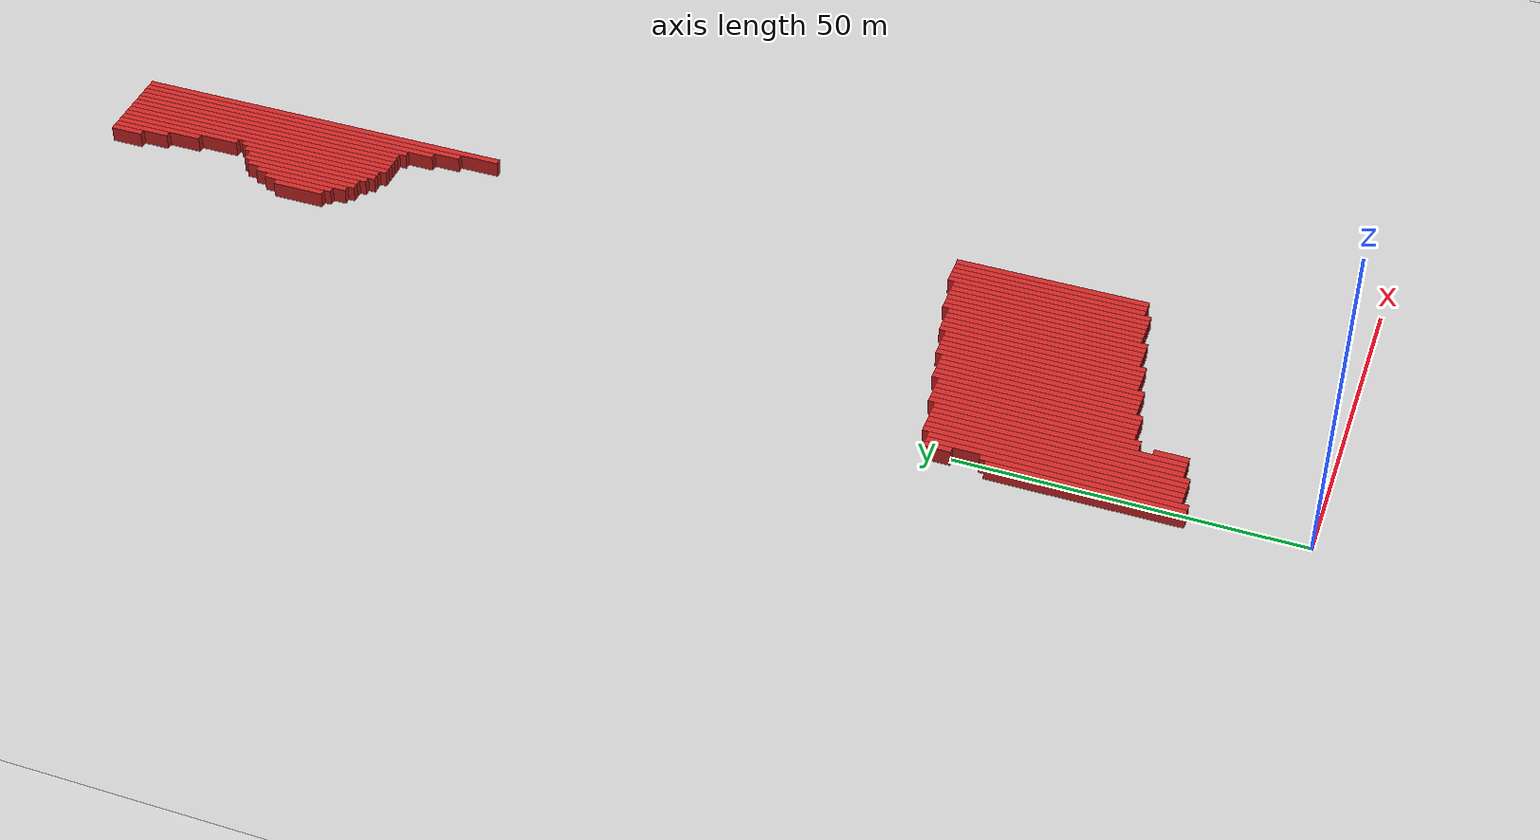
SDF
<sdf version="1.4">
 <world name="1_wall">
  <model name="ground_plane">
   <static>1</static>
   <link name="link">
    <collision name="collision">
     <geometry><plane><normal>0 0 1</normal><size>1000 1000</size></plane></geometry>
     <surface><friction><ode><mu>100</mu><mu2>50</mu2></ode></friction></surface>
    </collision>
    <visual name="visual">
     <cast_shadows>0</cast_shadows>
     <geometry><plane><normal>0 0 1</normal><size>10000 10000</size></plane></geometry>
     <material>
      <script><uri>file://media/materials/scripts/gazebo.material</uri><name>Gazebo/Grey</name></script>
     </material>
    </visual>
    <velocity_decay><linear>0</linear><angular>0</angular></velocity_decay>
   </link>
  </model>
  <model name="Wall_0">
   <static>1</static>
   <link name="Wall_0">
    <collision name="Wall_Collision_0">
     <geometry><box><size>28.0 1.0 2.5</size></box></geometry>
     <pose>0 0 1.25 0 -0 0</pose>
    </collision>
    <visual name="Wall_Visual_0">
     <pose>0 0 1.25 0 -0 0</pose>
     <geometry><box><size>28.0 1.0 2.5</size></box></geometry>
     <material>
      <script><uri>file://media/materials/scripts/gazebo.material</uri><name>Gazebo/Red</name></script>
     </material>
    </visual>
    <velocity_decay><linear>0</linear><angular>0</angular></velocity_decay>
    <pose>-1.5 31.0 0 0 0 1.5707963267948966</pose>
   </link>
  </model>
  <model name="Wall_1">
   <static>1</static>
   <link name="Wall_1">
    <collision name="Wall_Collision_1">
     <geometry><box><size>29.0 1.0 2.5</size></box></geometry>
     <pose>0 0 1.25 0 -0 0</pose>
    </collision>
    <visual name="Wall_Visual_1">
     <pose>0 0 1.25 0 -0 0</pose>
     <geometry><box><size>29.0 1.0 2.5</size></box></geometry>
     <material>
      <script><uri>file://media/materials/scripts/gazebo.material</uri><name>Gazebo/Red</name></script>
     </material>
    </visual>
    <velocity_decay><linear>0</linear><angular>0</angular></velocity_decay>
    <pose>-0.5 31.5 0 0 0 1.5707963267948966</pose>
   </link>
  </model>
  <model name="Wall_2">
   <static>1</static>
   <link name="Wall_2">
    <collision name="Wall_Collision_2">
     <geometry><box><size>4.0 1.0 2.5</size></box></geometry>
     <pose>0 0 1.25 0 -0 0</pose>
    </collision>
    <visual name="Wall_Visual_2">
     <pose>0 0 1.25 0 -0 0</pose>
     <geometry><box><size>4.0 1.0 2.5</size></box></geometry>
     <material>
      <script><uri>file://media/materials/scripts/gazebo.material</uri><name>Gazebo/Red</name></script>
     </material>
    </visual>
    <velocity_decay><linear>0</linear><angular>0</angular></velocity_decay>
    <pose>-0.5 52.0 0 0 0 1.5707963267948966</pose>
   </link>
  </model>
  <model name="Wall_3">
   <static>1</static>
   <link name="Wall_3">
    <collision name="Wall_Collision_3">
     <geometry><box><size>36.0 1.0 2.5</size></box></geometry>
     <pose>0 0 1.25 0 -0 0</pose>
    </collision>
    <visual name="Wall_Visual_3">
     <pose>0 0 1.25 0 -0 0</pose>
     <geometry><box><size>36.0 1.0 2.5</size></box></geometry>
     <material>
      <script><uri>file://media/materials/scripts/gazebo.material</uri><name>Gazebo/Red</name></script>
     </material>
    </visual>
    <velocity_decay><linear>0</linear><angular>0</angular></velocity_decay>
    <pose>0.5 36.0 0 0 0 1.5707963267948966</pose>
   </link>
  </model>
  <model name="Wall_4">
   <static>1</static>
   <link name="Wall_4">
    <collision name="Wall_Collision_4">
     <geometry><box><size>36.0 1.0 2.5</size></box></geometry>
     <pose>0 0 1.25 0 -0 0</pose>
    </collision>
    <visual name="Wall_Visual_4">
     <pose>0 0 1.25 0 -0 0</pose>
     <geometry><box><size>36.0 1.0 2.5</size></box></geometry>
     <material>
      <script><uri>file://media/materials/scripts/gazebo.material</uri><name>Gazebo/Red</name></script>
     </material>
    </visual>
    <velocity_decay><linear>0</linear><angular>0</angular></velocity_decay>
    <pose>1.5 36.0 0 0 0 1.5707963267948966</pose>
   </link>
  </model>
  <model name="Wall_5">
   <static>1</static>
   <link name="Wall_5">
    <collision name="Wall_Collision_5">
     <geometry><box><size>37.0 1.0 2.5</size></box></geometry>
     <pose>0 0 1.25 0 -0 0</pose>
    </collision>
    <visual name="Wall_Visual_5">
     <pose>0 0 1.25 0 -0 0</pose>
     <geometry><box><size>37.0 1.0 2.5</size></box></geometry>
     <material>
      <script><uri>file://media/materials/scripts/gazebo.material</uri><name>Gazebo/Red</name></script>
     </material>
    </visual>
    <velocity_decay><linear>0</linear><angular>0</angular></velocity_decay>
    <pose>2.5 36.5 0 0 0 1.5707963267948966</pose>
   </link>
  </model>
  <model name="Wall_6">
   <static>1</static>
   <link name="Wall_6">
    <collision name="Wall_Collision_6">
     <geometry><box><size>37.0 1.0 2.5</size></box></geometry>
     <pose>0 0 1.25 0 -0 0</pose>
    </collision>
    <visual name="Wall_Visual_6">
     <pose>0 0 1.25 0 -0 0</pose>
     <geometry><box><size>37.0 1.0 2.5</size></box></geometry>
     <material>
      <script><uri>file://media/materials/scripts/gazebo.material</uri><name>Gazebo/Red</name></script>
     </material>
    </visual>
    <velocity_decay><linear>0</linear><angular>0</angular></velocity_decay>
    <pose>3.5 36.5 0 0 0 1.5707963267948966</pose>
   </link>
  </model>
  <model name="Wall_7">
   <static>1</static>
   <link name="Wall_7">
    <collision name="Wall_Collision_7">
     <geometry><box><size>37.0 1.0 2.5</size></box></geometry>
     <pose>0 0 1.25 0 -0 0</pose>
    </collision>
    <visual name="Wall_Visual_7">
     <pose>0 0 1.25 0 -0 0</pose>
     <geometry><box><size>37.0 1.0 2.5</size></box></geometry>
     <material>
      <script><uri>file://media/materials/scripts/gazebo.material</uri><name>Gazebo/Red</name></script>
     </material>
    </visual>
    <velocity_decay><linear>0</linear><angular>0</angular></velocity_decay>
    <pose>4.5 36.5 0 0 0 1.5707963267948966</pose>
   </link>
  </model>
  <model name="Wall_8">
   <static>1</static>
   <link name="Wall_8">
    <collision name="Wall_Collision_8">
     <geometry><box><size>36.0 1.0 2.5</size></box></geometry>
     <pose>0 0 1.25 0 -0 0</pose>
    </collision>
    <visual name="Wall_Visual_8">
     <pose>0 0 1.25 0 -0 0</pose>
     <geometry><box><size>36.0 1.0 2.5</size></box></geometry>
     <material>
      <script><uri>file://media/materials/scripts/gazebo.material</uri><name>Gazebo/Red</name></script>
     </material>
    </visual>
    <velocity_decay><linear>0</linear><angular>0</angular></velocity_decay>
    <pose>5.5 37.0 0 0 0 1.5707963267948966</pose>
   </link>
  </model>
  <model name="Wall_9">
   <static>1</static>
   <link name="Wall_9">
    <collision name="Wall_Collision_9">
     <geometry><box><size>36.0 1.0 2.5</size></box></geometry>
     <pose>0 0 1.25 0 -0 0</pose>
    </collision>
    <visual name="Wall_Visual_9">
     <pose>0 0 1.25 0 -0 0</pose>
     <geometry><box><size>36.0 1.0 2.5</size></box></geometry>
     <material>
      <script><uri>file://media/materials/scripts/gazebo.material</uri><name>Gazebo/Red</name></script>
     </material>
    </visual>
    <velocity_decay><linear>0</linear><angular>0</angular></velocity_decay>
    <pose>6.5 37.0 0 0 0 1.5707963267948966</pose>
   </link>
  </model>
  <model name="Wall_10">
   <static>1</static>
   <link name="Wall_10">
    <collision name="Wall_Collision_10">
     <geometry><box><size>36.0 1.0 2.5</size></box></geometry>
     <pose>0 0 1.25 0 -0 0</pose>
    </collision>
    <visual name="Wall_Visual_10">
     <pose>0 0 1.25 0 -0 0</pose>
     <geometry><box><size>36.0 1.0 2.5</size></box></geometry>
     <material>
      <script><uri>file://media/materials/scripts/gazebo.material</uri><name>Gazebo/Red</name></script>
     </material>
    </visual>
    <velocity_decay><linear>0</linear><angular>0</angular></velocity_decay>
    <pose>7.5 37.0 0 0 0 1.5707963267948966</pose>
   </link>
  </model>
  <model name="Wall_11">
   <static>1</static>
   <link name="Wall_11">
    <collision name="Wall_Collision_11">
     <geometry><box><size>5.0 1.0 2.5</size></box></geometry>
     <pose>0 0 1.25 0 -0 0</pose>
    </collision>
    <visual name="Wall_Visual_11">
     <pose>0 0 1.25 0 -0 0</pose>
     <geometry><box><size>5.0 1.0 2.5</size></box></geometry>
     <material>
      <script><uri>file://media/materials/scripts/gazebo.material</uri><name>Gazebo/Red</name></script>
     </material>
    </visual>
    <velocity_decay><linear>0</linear><angular>0</angular></velocity_decay>
    <pose>8.5 21.5 0 0 0 1.5707963267948966</pose>
   </link>
  </model>
  <model name="Wall_12">
   <static>1</static>
   <link name="Wall_12">
    <collision name="Wall_Collision_12">
     <geometry><box><size>30.0 1.0 2.5</size></box></geometry>
     <pose>0 0 1.25 0 -0 0</pose>
    </collision>
    <visual name="Wall_Visual_12">
     <pose>0 0 1.25 0 -0 0</pose>
     <geometry><box><size>30.0 1.0 2.5</size></box></geometry>
     <material>
      <script><uri>file://media/materials/scripts/gazebo.material</uri><name>Gazebo/Red</name></script>
     </material>
    </visual>
    <velocity_decay><linear>0</linear><angular>0</angular></velocity_decay>
    <pose>8.5 41.0 0 0 0 1.5707963267948966</pose>
   </link>
  </model>
  <model name="Wall_13">
   <static>1</static>
   <link name="Wall_13">
    <collision name="Wall_Collision_13">
     <geometry><box><size>30.0 1.0 2.5</size></box></geometry>
     <pose>0 0 1.25 0 -0 0</pose>
    </collision>
    <visual name="Wall_Visual_13">
     <pose>0 0 1.25 0 -0 0</pose>
     <geometry><box><size>30.0 1.0 2.5</size></box></geometry>
     <material>
      <script><uri>file://media/materials/scripts/gazebo.material</uri><name>Gazebo/Red</name></script>
     </material>
    </visual>
    <velocity_decay><linear>0</linear><angular>0</angular></velocity_decay>
    <pose>9.5 41.0 0 0 0 1.5707963267948966</pose>
   </link>
  </model>
  <model name="Wall_14">
   <static>1</static>
   <link name="Wall_14">
    <collision name="Wall_Collision_14">
     <geometry><box><size>29.0 1.0 2.5</size></box></geometry>
     <pose>0 0 1.25 0 -0 0</pose>
    </collision>
    <visual name="Wall_Visual_14">
     <pose>0 0 1.25 0 -0 0</pose>
     <geometry><box><size>29.0 1.0 2.5</size></box></geometry>
     <material>
      <script><uri>file://media/materials/scripts/gazebo.material</uri><name>Gazebo/Red</name></script>
     </material>
    </visual>
    <velocity_decay><linear>0</linear><angular>0</angular></velocity_decay>
    <pose>10.5 41.5 0 0 0 1.5707963267948966</pose>
   </link>
  </model>
  <model name="Wall_15">
   <static>1</static>
   <link name="Wall_15">
    <collision name="Wall_Collision_15">
     <geometry><box><size>29.0 1.0 2.5</size></box></geometry>
     <pose>0 0 1.25 0 -0 0</pose>
    </collision>
    <visual name="Wall_Visual_15">
     <pose>0 0 1.25 0 -0 0</pose>
     <geometry><box><size>29.0 1.0 2.5</size></box></geometry>
     <material>
      <script><uri>file://media/materials/scripts/gazebo.material</uri><name>Gazebo/Red</name></script>
     </material>
    </visual>
    <velocity_decay><linear>0</linear><angular>0</angular></velocity_decay>
    <pose>11.5 41.5 0 0 0 1.5707963267948966</pose>
   </link>
  </model>
  <model name="Wall_16">
   <static>1</static>
   <link name="Wall_16">
    <collision name="Wall_Collision_16">
     <geometry><box><size>29.0 1.0 2.5</size></box></geometry>
     <pose>0 0 1.25 0 -0 0</pose>
    </collision>
    <visual name="Wall_Visual_16">
     <pose>0 0 1.25 0 -0 0</pose>
     <geometry><box><size>29.0 1.0 2.5</size></box></geometry>
     <material>
      <script><uri>file://media/materials/scripts/gazebo.material</uri><name>Gazebo/Red</name></script>
     </material>
    </visual>
    <velocity_decay><linear>0</linear><angular>0</angular></velocity_decay>
    <pose>12.5 41.5 0 0 0 1.5707963267948966</pose>
   </link>
  </model>
  <model name="Wall_17">
   <static>1</static>
   <link name="Wall_17">
    <collision name="Wall_Collision_17">
     <geometry><box><size>30.0 1.0 2.5</size></box></geometry>
     <pose>0 0 1.25 0 -0 0</pose>
    </collision>
    <visual name="Wall_Visual_17">
     <pose>0 0 1.25 0 -0 0</pose>
     <geometry><box><size>30.0 1.0 2.5</size></box></geometry>
     <material>
      <script><uri>file://media/materials/scripts/gazebo.material</uri><name>Gazebo/Red</name></script>
     </material>
    </visual>
    <velocity_decay><linear>0</linear><angular>0</angular></velocity_decay>
    <pose>13.5 42.0 0 0 0 1.5707963267948966</pose>
   </link>
  </model>
  <model name="Wall_18">
   <static>1</static>
   <link name="Wall_18">
    <collision name="Wall_Collision_18">
     <geometry><box><size>30.0 1.0 2.5</size></box></geometry>
     <pose>0 0 1.25 0 -0 0</pose>
    </collision>
    <visual name="Wall_Visual_18">
     <pose>0 0 1.25 0 -0 0</pose>
     <geometry><box><size>30.0 1.0 2.5</size></box></geometry>
     <material>
      <script><uri>file://media/materials/scripts/gazebo.material</uri><name>Gazebo/Red</name></script>
     </material>
    </visual>
    <velocity_decay><linear>0</linear><angular>0</angular></velocity_decay>
    <pose>14.5 42.0 0 0 0 1.5707963267948966</pose>
   </link>
  </model>
  <model name="Wall_19">
   <static>1</static>
   <link name="Wall_19">
    <collision name="Wall_Collision_19">
     <geometry><box><size>29.0 1.0 2.5</size></box></geometry>
     <pose>0 0 1.25 0 -0 0</pose>
    </collision>
    <visual name="Wall_Visual_19">
     <pose>0 0 1.25 0 -0 0</pose>
     <geometry><box><size>29.0 1.0 2.5</size></box></geometry>
     <material>
      <script><uri>file://media/materials/scripts/gazebo.material</uri><name>Gazebo/Red</name></script>
     </material>
    </visual>
    <velocity_decay><linear>0</linear><angular>0</angular></velocity_decay>
    <pose>15.5 42.5 0 0 0 1.5707963267948966</pose>
   </link>
  </model>
  <model name="Wall_20">
   <static>1</static>
   <link name="Wall_20">
    <collision name="Wall_Collision_20">
     <geometry><box><size>29.0 1.0 2.5</size></box></geometry>
     <pose>0 0 1.25 0 -0 0</pose>
    </collision>
    <visual name="Wall_Visual_20">
     <pose>0 0 1.25 0 -0 0</pose>
     <geometry><box><size>29.0 1.0 2.5</size></box></geometry>
     <material>
      <script><uri>file://media/materials/scripts/gazebo.material</uri><name>Gazebo/Red</name></script>
     </material>
    </visual>
    <velocity_decay><linear>0</linear><angular>0</angular></velocity_decay>
    <pose>16.5 42.5 0 0 0 1.5707963267948966</pose>
   </link>
  </model>
  <model name="Wall_21">
   <static>1</static>
   <link name="Wall_21">
    <collision name="Wall_Collision_21">
     <geometry><box><size>29.0 1.0 2.5</size></box></geometry>
     <pose>0 0 1.25 0 -0 0</pose>
    </collision>
    <visual name="Wall_Visual_21">
     <pose>0 0 1.25 0 -0 0</pose>
     <geometry><box><size>29.0 1.0 2.5</size></box></geometry>
     <material>
      <script><uri>file://media/materials/scripts/gazebo.material</uri><name>Gazebo/Red</name></script>
     </material>
    </visual>
    <velocity_decay><linear>0</linear><angular>0</angular></velocity_decay>
    <pose>17.5 42.5 0 0 0 1.5707963267948966</pose>
   </link>
  </model>
  <model name="Wall_22">
   <static>1</static>
   <link name="Wall_22">
    <collision name="Wall_Collision_22">
     <geometry><box><size>30.0 1.0 2.5</size></box></geometry>
     <pose>0 0 1.25 0 -0 0</pose>
    </collision>
    <visual name="Wall_Visual_22">
     <pose>0 0 1.25 0 -0 0</pose>
     <geometry><box><size>30.0 1.0 2.5</size></box></geometry>
     <material>
      <script><uri>file://media/materials/scripts/gazebo.material</uri><name>Gazebo/Red</name></script>
     </material>
    </visual>
    <velocity_decay><linear>0</linear><angular>0</angular></velocity_decay>
    <pose>18.5 43.0 0 0 0 1.5707963267948966</pose>
   </link>
  </model>
  <model name="Wall_23">
   <static>1</static>
   <link name="Wall_23">
    <collision name="Wall_Collision_23">
     <geometry><box><size>30.0 1.0 2.5</size></box></geometry>
     <pose>0 0 1.25 0 -0 0</pose>
    </collision>
    <visual name="Wall_Visual_23">
     <pose>0 0 1.25 0 -0 0</pose>
     <geometry><box><size>30.0 1.0 2.5</size></box></geometry>
     <material>
      <script><uri>file://media/materials/scripts/gazebo.material</uri><name>Gazebo/Red</name></script>
     </material>
    </visual>
    <velocity_decay><linear>0</linear><angular>0</angular></velocity_decay>
    <pose>19.5 43.0 0 0 0 1.5707963267948966</pose>
   </link>
  </model>
  <model name="Wall_24">
   <static>1</static>
   <link name="Wall_24">
    <collision name="Wall_Collision_24">
     <geometry><box><size>29.0 1.0 2.5</size></box></geometry>
     <pose>0 0 1.25 0 -0 0</pose>
    </collision>
    <visual name="Wall_Visual_24">
     <pose>0 0 1.25 0 -0 0</pose>
     <geometry><box><size>29.0 1.0 2.5</size></box></geometry>
     <material>
      <script><uri>file://media/materials/scripts/gazebo.material</uri><name>Gazebo/Red</name></script>
     </material>
    </visual>
    <velocity_decay><linear>0</linear><angular>0</angular></velocity_decay>
    <pose>20.5 43.5 0 0 0 1.5707963267948966</pose>
   </link>
  </model>
  <model name="Wall_25">
   <static>1</static>
   <link name="Wall_25">
    <collision name="Wall_Collision_25">
     <geometry><box><size>29.0 1.0 2.5</size></box></geometry>
     <pose>0 0 1.25 0 -0 0</pose>
    </collision>
    <visual name="Wall_Visual_25">
     <pose>0 0 1.25 0 -0 0</pose>
     <geometry><box><size>29.0 1.0 2.5</size></box></geometry>
     <material>
      <script><uri>file://media/materials/scripts/gazebo.material</uri><name>Gazebo/Red</name></script>
     </material>
    </visual>
    <velocity_decay><linear>0</linear><angular>0</angular></velocity_decay>
    <pose>21.5 43.5 0 0 0 1.5707963267948966</pose>
   </link>
  </model>
  <model name="Wall_26">
   <static>1</static>
   <link name="Wall_26">
    <collision name="Wall_Collision_26">
     <geometry><box><size>8.0 1.0 2.5</size></box></geometry>
     <pose>0 0 1.25 0 -0 0</pose>
    </collision>
    <visual name="Wall_Visual_26">
     <pose>0 0 1.25 0 -0 0</pose>
     <geometry><box><size>8.0 1.0 2.5</size></box></geometry>
     <material>
      <script><uri>file://media/materials/scripts/gazebo.material</uri><name>Gazebo/Red</name></script>
     </material>
    </visual>
    <velocity_decay><linear>0</linear><angular>0</angular></velocity_decay>
    <pose>21.5 160.0 0 0 0 1.5707963267948966</pose>
   </link>
  </model>
  <model name="Wall_27">
   <static>1</static>
   <link name="Wall_27">
    <collision name="Wall_Collision_27">
     <geometry><box><size>29.0 1.0 2.5</size></box></geometry>
     <pose>0 0 1.25 0 -0 0</pose>
    </collision>
    <visual name="Wall_Visual_27">
     <pose>0 0 1.25 0 -0 0</pose>
     <geometry><box><size>29.0 1.0 2.5</size></box></geometry>
     <material>
      <script><uri>file://media/materials/scripts/gazebo.material</uri><name>Gazebo/Red</name></script>
     </material>
    </visual>
    <velocity_decay><linear>0</linear><angular>0</angular></velocity_decay>
    <pose>22.5 43.5 0 0 0 1.5707963267948966</pose>
   </link>
  </model>
  <model name="Wall_28">
   <static>1</static>
   <link name="Wall_28">
    <collision name="Wall_Collision_28">
     <geometry><box><size>11.0 1.0 2.5</size></box></geometry>
     <pose>0 0 1.25 0 -0 0</pose>
    </collision>
    <visual name="Wall_Visual_28">
     <pose>0 0 1.25 0 -0 0</pose>
     <geometry><box><size>11.0 1.0 2.5</size></box></geometry>
     <material>
      <script><uri>file://media/materials/scripts/gazebo.material</uri><name>Gazebo/Red</name></script>
     </material>
    </visual>
    <velocity_decay><linear>0</linear><angular>0</angular></velocity_decay>
    <pose>22.5 160.5 0 0 0 1.5707963267948966</pose>
   </link>
  </model>
  <model name="Wall_29">
   <static>1</static>
   <link name="Wall_29">
    <collision name="Wall_Collision_29">
     <geometry><box><size>30.0 1.0 2.5</size></box></geometry>
     <pose>0 0 1.25 0 -0 0</pose>
    </collision>
    <visual name="Wall_Visual_29">
     <pose>0 0 1.25 0 -0 0</pose>
     <geometry><box><size>30.0 1.0 2.5</size></box></geometry>
     <material>
      <script><uri>file://media/materials/scripts/gazebo.material</uri><name>Gazebo/Red</name></script>
     </material>
    </visual>
    <velocity_decay><linear>0</linear><angular>0</angular></velocity_decay>
    <pose>23.5 44.0 0 0 0 1.5707963267948966</pose>
   </link>
  </model>
  <model name="Wall_30">
   <static>1</static>
   <link name="Wall_30">
    <collision name="Wall_Collision_30">
     <geometry><box><size>15.0 1.0 2.5</size></box></geometry>
     <pose>0 0 1.25 0 -0 0</pose>
    </collision>
    <visual name="Wall_Visual_30">
     <pose>0 0 1.25 0 -0 0</pose>
     <geometry><box><size>15.0 1.0 2.5</size></box></geometry>
     <material>
      <script><uri>file://media/materials/scripts/gazebo.material</uri><name>Gazebo/Red</name></script>
     </material>
    </visual>
    <velocity_decay><linear>0</linear><angular>0</angular></velocity_decay>
    <pose>23.5 160.5 0 0 0 1.5707963267948966</pose>
   </link>
  </model>
  <model name="Wall_31">
   <static>1</static>
   <link name="Wall_31">
    <collision name="Wall_Collision_31">
     <geometry><box><size>30.0 1.0 2.5</size></box></geometry>
     <pose>0 0 1.25 0 -0 0</pose>
    </collision>
    <visual name="Wall_Visual_31">
     <pose>0 0 1.25 0 -0 0</pose>
     <geometry><box><size>30.0 1.0 2.5</size></box></geometry>
     <material>
      <script><uri>file://media/materials/scripts/gazebo.material</uri><name>Gazebo/Red</name></script>
     </material>
    </visual>
    <velocity_decay><linear>0</linear><angular>0</angular></velocity_decay>
    <pose>24.5 44.0 0 0 0 1.5707963267948966</pose>
   </link>
  </model>
  <model name="Wall_32">
   <static>1</static>
   <link name="Wall_32">
    <collision name="Wall_Collision_32">
     <geometry><box><size>18.0 1.0 2.5</size></box></geometry>
     <pose>0 0 1.25 0 -0 0</pose>
    </collision>
    <visual name="Wall_Visual_32">
     <pose>0 0 1.25 0 -0 0</pose>
     <geometry><box><size>18.0 1.0 2.5</size></box></geometry>
     <material>
      <script><uri>file://media/materials/scripts/gazebo.material</uri><name>Gazebo/Red</name></script>
     </material>
    </visual>
    <velocity_decay><linear>0</linear><angular>0</angular></velocity_decay>
    <pose>24.5 161.0 0 0 0 1.5707963267948966</pose>
   </link>
  </model>
  <model name="Wall_33">
   <static>1</static>
   <link name="Wall_33">
    <collision name="Wall_Collision_33">
     <geometry><box><size>29.0 1.0 2.5</size></box></geometry>
     <pose>0 0 1.25 0 -0 0</pose>
    </collision>
    <visual name="Wall_Visual_33">
     <pose>0 0 1.25 0 -0 0</pose>
     <geometry><box><size>29.0 1.0 2.5</size></box></geometry>
     <material>
      <script><uri>file://media/materials/scripts/gazebo.material</uri><name>Gazebo/Red</name></script>
     </material>
    </visual>
    <velocity_decay><linear>0</linear><angular>0</angular></velocity_decay>
    <pose>25.5 44.5 0 0 0 1.5707963267948966</pose>
   </link>
  </model>
  <model name="Wall_34">
   <static>1</static>
   <link name="Wall_34">
    <collision name="Wall_Collision_34">
     <geometry><box><size>19.0 1.0 2.5</size></box></geometry>
     <pose>0 0 1.25 0 -0 0</pose>
    </collision>
    <visual name="Wall_Visual_34">
     <pose>0 0 1.25 0 -0 0</pose>
     <geometry><box><size>19.0 1.0 2.5</size></box></geometry>
     <material>
      <script><uri>file://media/materials/scripts/gazebo.material</uri><name>Gazebo/Red</name></script>
     </material>
    </visual>
    <velocity_decay><linear>0</linear><angular>0</angular></velocity_decay>
    <pose>25.5 161.5 0 0 0 1.5707963267948966</pose>
   </link>
  </model>
  <model name="Wall_35">
   <static>1</static>
   <link name="Wall_35">
    <collision name="Wall_Collision_35">
     <geometry><box><size>5.0 1.0 2.5</size></box></geometry>
     <pose>0 0 1.25 0 -0 0</pose>
    </collision>
    <visual name="Wall_Visual_35">
     <pose>0 0 1.25 0 -0 0</pose>
     <geometry><box><size>5.0 1.0 2.5</size></box></geometry>
     <material>
      <script><uri>file://media/materials/scripts/gazebo.material</uri><name>Gazebo/Red</name></script>
     </material>
    </visual>
    <velocity_decay><linear>0</linear><angular>0</angular></velocity_decay>
    <pose>25.5 191.5 0 0 0 1.5707963267948966</pose>
   </link>
  </model>
  <model name="Wall_36">
   <static>1</static>
   <link name="Wall_36">
    <collision name="Wall_Collision_36">
     <geometry><box><size>29.0 1.0 2.5</size></box></geometry>
     <pose>0 0 1.25 0 -0 0</pose>
    </collision>
    <visual name="Wall_Visual_36">
     <pose>0 0 1.25 0 -0 0</pose>
     <geometry><box><size>29.0 1.0 2.5</size></box></geometry>
     <material>
      <script><uri>file://media/materials/scripts/gazebo.material</uri><name>Gazebo/Red</name></script>
     </material>
    </visual>
    <velocity_decay><linear>0</linear><angular>0</angular></velocity_decay>
    <pose>26.5 44.5 0 0 0 1.5707963267948966</pose>
   </link>
  </model>
  <model name="Wall_37">
   <static>1</static>
   <link name="Wall_37">
    <collision name="Wall_Collision_37">
     <geometry><box><size>20.0 1.0 2.5</size></box></geometry>
     <pose>0 0 1.25 0 -0 0</pose>
    </collision>
    <visual name="Wall_Visual_37">
     <pose>0 0 1.25 0 -0 0</pose>
     <geometry><box><size>20.0 1.0 2.5</size></box></geometry>
     <material>
      <script><uri>file://media/materials/scripts/gazebo.material</uri><name>Gazebo/Red</name></script>
     </material>
    </visual>
    <velocity_decay><linear>0</linear><angular>0</angular></velocity_decay>
    <pose>26.5 161.0 0 0 0 1.5707963267948966</pose>
   </link>
  </model>
  <model name="Wall_38">
   <static>1</static>
   <link name="Wall_38">
    <collision name="Wall_Collision_38">
     <geometry><box><size>9.0 1.0 2.5</size></box></geometry>
     <pose>0 0 1.25 0 -0 0</pose>
    </collision>
    <visual name="Wall_Visual_38">
     <pose>0 0 1.25 0 -0 0</pose>
     <geometry><box><size>9.0 1.0 2.5</size></box></geometry>
     <material>
      <script><uri>file://media/materials/scripts/gazebo.material</uri><name>Gazebo/Red</name></script>
     </material>
    </visual>
    <velocity_decay><linear>0</linear><angular>0</angular></velocity_decay>
    <pose>26.5 189.5 0 0 0 1.5707963267948966</pose>
   </link>
  </model>
  <model name="Wall_39">
   <static>1</static>
   <link name="Wall_39">
    <collision name="Wall_Collision_39">
     <geometry><box><size>29.0 1.0 2.5</size></box></geometry>
     <pose>0 0 1.25 0 -0 0</pose>
    </collision>
    <visual name="Wall_Visual_39">
     <pose>0 0 1.25 0 -0 0</pose>
     <geometry><box><size>29.0 1.0 2.5</size></box></geometry>
     <material>
      <script><uri>file://media/materials/scripts/gazebo.material</uri><name>Gazebo/Red</name></script>
     </material>
    </visual>
    <velocity_decay><linear>0</linear><angular>0</angular></velocity_decay>
    <pose>27.5 44.5 0 0 0 1.5707963267948966</pose>
   </link>
  </model>
  <model name="Wall_40">
   <static>1</static>
   <link name="Wall_40">
    <collision name="Wall_Collision_40">
     <geometry><box><size>22.0 1.0 2.5</size></box></geometry>
     <pose>0 0 1.25 0 -0 0</pose>
    </collision>
    <visual name="Wall_Visual_40">
     <pose>0 0 1.25 0 -0 0</pose>
     <geometry><box><size>22.0 1.0 2.5</size></box></geometry>
     <material>
      <script><uri>file://media/materials/scripts/gazebo.material</uri><name>Gazebo/Red</name></script>
     </material>
    </visual>
    <velocity_decay><linear>0</linear><angular>0</angular></velocity_decay>
    <pose>27.5 161.0 0 0 0 1.5707963267948966</pose>
   </link>
  </model>
  <model name="Wall_41">
   <static>1</static>
   <link name="Wall_41">
    <collision name="Wall_Collision_41">
     <geometry><box><size>14.0 1.0 2.5</size></box></geometry>
     <pose>0 0 1.25 0 -0 0</pose>
    </collision>
    <visual name="Wall_Visual_41">
     <pose>0 0 1.25 0 -0 0</pose>
     <geometry><box><size>14.0 1.0 2.5</size></box></geometry>
     <material>
      <script><uri>file://media/materials/scripts/gazebo.material</uri><name>Gazebo/Red</name></script>
     </material>
    </visual>
    <velocity_decay><linear>0</linear><angular>0</angular></velocity_decay>
    <pose>27.5 187.0 0 0 0 1.5707963267948966</pose>
   </link>
  </model>
  <model name="Wall_42">
   <static>1</static>
   <link name="Wall_42">
    <collision name="Wall_Collision_42">
     <geometry><box><size>30.0 1.0 2.5</size></box></geometry>
     <pose>0 0 1.25 0 -0 0</pose>
    </collision>
    <visual name="Wall_Visual_42">
     <pose>0 0 1.25 0 -0 0</pose>
     <geometry><box><size>30.0 1.0 2.5</size></box></geometry>
     <material>
      <script><uri>file://media/materials/scripts/gazebo.material</uri><name>Gazebo/Red</name></script>
     </material>
    </visual>
    <velocity_decay><linear>0</linear><angular>0</angular></velocity_decay>
    <pose>28.5 45.0 0 0 0 1.5707963267948966</pose>
   </link>
  </model>
  <model name="Wall_43">
   <static>1</static>
   <link name="Wall_43">
    <collision name="Wall_Collision_43">
     <geometry><box><size>23.0 1.0 2.5</size></box></geometry>
     <pose>0 0 1.25 0 -0 0</pose>
    </collision>
    <visual name="Wall_Visual_43">
     <pose>0 0 1.25 0 -0 0</pose>
     <geometry><box><size>23.0 1.0 2.5</size></box></geometry>
     <material>
      <script><uri>file://media/materials/scripts/gazebo.material</uri><name>Gazebo/Red</name></script>
     </material>
    </visual>
    <velocity_decay><linear>0</linear><angular>0</angular></velocity_decay>
    <pose>28.5 161.5 0 0 0 1.5707963267948966</pose>
   </link>
  </model>
  <model name="Wall_44">
   <static>1</static>
   <link name="Wall_44">
    <collision name="Wall_Collision_44">
     <geometry><box><size>20.0 1.0 2.5</size></box></geometry>
     <pose>0 0 1.25 0 -0 0</pose>
    </collision>
    <visual name="Wall_Visual_44">
     <pose>0 0 1.25 0 -0 0</pose>
     <geometry><box><size>20.0 1.0 2.5</size></box></geometry>
     <material>
      <script><uri>file://media/materials/scripts/gazebo.material</uri><name>Gazebo/Red</name></script>
     </material>
    </visual>
    <velocity_decay><linear>0</linear><angular>0</angular></velocity_decay>
    <pose>28.5 184.0 0 0 0 1.5707963267948966</pose>
   </link>
  </model>
  <model name="Wall_45">
   <static>1</static>
   <link name="Wall_45">
    <collision name="Wall_Collision_45">
     <geometry><box><size>30.0 1.0 2.5</size></box></geometry>
     <pose>0 0 1.25 0 -0 0</pose>
    </collision>
    <visual name="Wall_Visual_45">
     <pose>0 0 1.25 0 -0 0</pose>
     <geometry><box><size>30.0 1.0 2.5</size></box></geometry>
     <material>
      <script><uri>file://media/materials/scripts/gazebo.material</uri><name>Gazebo/Red</name></script>
     </material>
    </visual>
    <velocity_decay><linear>0</linear><angular>0</angular></velocity_decay>
    <pose>29.5 45.0 0 0 0 1.5707963267948966</pose>
   </link>
  </model>
  <model name="Wall_46">
   <static>1</static>
   <link name="Wall_46">
    <collision name="Wall_Collision_46">
     <geometry><box><size>45.0 1.0 2.5</size></box></geometry>
     <pose>0 0 1.25 0 -0 0</pose>
    </collision>
    <visual name="Wall_Visual_46">
     <pose>0 0 1.25 0 -0 0</pose>
     <geometry><box><size>45.0 1.0 2.5</size></box></geometry>
     <material>
      <script><uri>file://media/materials/scripts/gazebo.material</uri><name>Gazebo/Red</name></script>
     </material>
    </visual>
    <velocity_decay><linear>0</linear><angular>0</angular></velocity_decay>
    <pose>29.5 171.5 0 0 0 1.5707963267948966</pose>
   </link>
  </model>
  <model name="Wall_47">
   <static>1</static>
   <link name="Wall_47">
    <collision name="Wall_Collision_47">
     <geometry><box><size>29.0 1.0 2.5</size></box></geometry>
     <pose>0 0 1.25 0 -0 0</pose>
    </collision>
    <visual name="Wall_Visual_47">
     <pose>0 0 1.25 0 -0 0</pose>
     <geometry><box><size>29.0 1.0 2.5</size></box></geometry>
     <material>
      <script><uri>file://media/materials/scripts/gazebo.material</uri><name>Gazebo/Red</name></script>
     </material>
    </visual>
    <velocity_decay><linear>0</linear><angular>0</angular></velocity_decay>
    <pose>30.5 45.5 0 0 0 1.5707963267948966</pose>
   </link>
  </model>
  <model name="Wall_48">
   <static>1</static>
   <link name="Wall_48">
    <collision name="Wall_Collision_48">
     <geometry><box><size>45.0 1.0 2.5</size></box></geometry>
     <pose>0 0 1.25 0 -0 0</pose>
    </collision>
    <visual name="Wall_Visual_48">
     <pose>0 0 1.25 0 -0 0</pose>
     <geometry><box><size>45.0 1.0 2.5</size></box></geometry>
     <material>
      <script><uri>file://media/materials/scripts/gazebo.material</uri><name>Gazebo/Red</name></script>
     </material>
    </visual>
    <velocity_decay><linear>0</linear><angular>0</angular></velocity_decay>
    <pose>30.5 171.5 0 0 0 1.5707963267948966</pose>
   </link>
  </model>
  <model name="Wall_49">
   <static>1</static>
   <link name="Wall_49">
    <collision name="Wall_Collision_49">
     <geometry><box><size>29.0 1.0 2.5</size></box></geometry>
     <pose>0 0 1.25 0 -0 0</pose>
    </collision>
    <visual name="Wall_Visual_49">
     <pose>0 0 1.25 0 -0 0</pose>
     <geometry><box><size>29.0 1.0 2.5</size></box></geometry>
     <material>
      <script><uri>file://media/materials/scripts/gazebo.material</uri><name>Gazebo/Red</name></script>
     </material>
    </visual>
    <velocity_decay><linear>0</linear><angular>0</angular></velocity_decay>
    <pose>31.5 45.5 0 0 0 1.5707963267948966</pose>
   </link>
  </model>
  <model name="Wall_50">
   <static>1</static>
   <link name="Wall_50">
    <collision name="Wall_Collision_50">
     <geometry><box><size>45.0 1.0 2.5</size></box></geometry>
     <pose>0 0 1.25 0 -0 0</pose>
    </collision>
    <visual name="Wall_Visual_50">
     <pose>0 0 1.25 0 -0 0</pose>
     <geometry><box><size>45.0 1.0 2.5</size></box></geometry>
     <material>
      <script><uri>file://media/materials/scripts/gazebo.material</uri><name>Gazebo/Red</name></script>
     </material>
    </visual>
    <velocity_decay><linear>0</linear><angular>0</angular></velocity_decay>
    <pose>31.5 171.5 0 0 0 1.5707963267948966</pose>
   </link>
  </model>
  <model name="Wall_51">
   <static>1</static>
   <link name="Wall_51">
    <collision name="Wall_Collision_51">
     <geometry><box><size>29.0 1.0 2.5</size></box></geometry>
     <pose>0 0 1.25 0 -0 0</pose>
    </collision>
    <visual name="Wall_Visual_51">
     <pose>0 0 1.25 0 -0 0</pose>
     <geometry><box><size>29.0 1.0 2.5</size></box></geometry>
     <material>
      <script><uri>file://media/materials/scripts/gazebo.material</uri><name>Gazebo/Red</name></script>
     </material>
    </visual>
    <velocity_decay><linear>0</linear><angular>0</angular></velocity_decay>
    <pose>32.5 45.5 0 0 0 1.5707963267948966</pose>
   </link>
  </model>
  <model name="Wall_52">
   <static>1</static>
   <link name="Wall_52">
    <collision name="Wall_Collision_52">
     <geometry><box><size>45.0 1.0 2.5</size></box></geometry>
     <pose>0 0 1.25 0 -0 0</pose>
    </collision>
    <visual name="Wall_Visual_52">
     <pose>0 0 1.25 0 -0 0</pose>
     <geometry><box><size>45.0 1.0 2.5</size></box></geometry>
     <material>
      <script><uri>file://media/materials/scripts/gazebo.material</uri><name>Gazebo/Red</name></script>
     </material>
    </visual>
    <velocity_decay><linear>0</linear><angular>0</angular></velocity_decay>
    <pose>32.5 171.5 0 0 0 1.5707963267948966</pose>
   </link>
  </model>
  <model name="Wall_53">
   <static>1</static>
   <link name="Wall_53">
    <collision name="Wall_Collision_53">
     <geometry><box><size>29.0 1.0 2.5</size></box></geometry>
     <pose>0 0 1.25 0 -0 0</pose>
    </collision>
    <visual name="Wall_Visual_53">
     <pose>0 0 1.25 0 -0 0</pose>
     <geometry><box><size>29.0 1.0 2.5</size></box></geometry>
     <material>
      <script><uri>file://media/materials/scripts/gazebo.material</uri><name>Gazebo/Red</name></script>
     </material>
    </visual>
    <velocity_decay><linear>0</linear><angular>0</angular></velocity_decay>
    <pose>33.5 45.5 0 0 0 1.5707963267948966</pose>
   </link>
  </model>
  <model name="Wall_54">
   <static>1</static>
   <link name="Wall_54">
    <collision name="Wall_Collision_54">
     <geometry><box><size>45.0 1.0 2.5</size></box></geometry>
     <pose>0 0 1.25 0 -0 0</pose>
    </collision>
    <visual name="Wall_Visual_54">
     <pose>0 0 1.25 0 -0 0</pose>
     <geometry><box><size>45.0 1.0 2.5</size></box></geometry>
     <material>
      <script><uri>file://media/materials/scripts/gazebo.material</uri><name>Gazebo/Red</name></script>
     </material>
    </visual>
    <velocity_decay><linear>0</linear><angular>0</angular></velocity_decay>
    <pose>33.5 171.5 0 0 0 1.5707963267948966</pose>
   </link>
  </model>
  <model name="Wall_55">
   <static>1</static>
   <link name="Wall_55">
    <collision name="Wall_Collision_55">
     <geometry><box><size>30.0 1.0 2.5</size></box></geometry>
     <pose>0 0 1.25 0 -0 0</pose>
    </collision>
    <visual name="Wall_Visual_55">
     <pose>0 0 1.25 0 -0 0</pose>
     <geometry><box><size>30.0 1.0 2.5</size></box></geometry>
     <material>
      <script><uri>file://media/materials/scripts/gazebo.material</uri><name>Gazebo/Red</name></script>
     </material>
    </visual>
    <velocity_decay><linear>0</linear><angular>0</angular></velocity_decay>
    <pose>34.5 46.0 0 0 0 1.5707963267948966</pose>
   </link>
  </model>
  <model name="Wall_56">
   <static>1</static>
   <link name="Wall_56">
    <collision name="Wall_Collision_56">
     <geometry><box><size>46.0 1.0 2.5</size></box></geometry>
     <pose>0 0 1.25 0 -0 0</pose>
    </collision>
    <visual name="Wall_Visual_56">
     <pose>0 0 1.25 0 -0 0</pose>
     <geometry><box><size>46.0 1.0 2.5</size></box></geometry>
     <material>
      <script><uri>file://media/materials/scripts/gazebo.material</uri><name>Gazebo/Red</name></script>
     </material>
    </visual>
    <velocity_decay><linear>0</linear><angular>0</angular></velocity_decay>
    <pose>34.5 171.0 0 0 0 1.5707963267948966</pose>
   </link>
  </model>
  <model name="Wall_57">
   <static>1</static>
   <link name="Wall_57">
    <collision name="Wall_Collision_57">
     <geometry><box><size>30.0 1.0 2.5</size></box></geometry>
     <pose>0 0 1.25 0 -0 0</pose>
    </collision>
    <visual name="Wall_Visual_57">
     <pose>0 0 1.25 0 -0 0</pose>
     <geometry><box><size>30.0 1.0 2.5</size></box></geometry>
     <material>
      <script><uri>file://media/materials/scripts/gazebo.material</uri><name>Gazebo/Red</name></script>
     </material>
    </visual>
    <velocity_decay><linear>0</linear><angular>0</angular></velocity_decay>
    <pose>35.5 46.0 0 0 0 1.5707963267948966</pose>
   </link>
  </model>
  <model name="Wall_58">
   <static>1</static>
   <link name="Wall_58">
    <collision name="Wall_Collision_58">
     <geometry><box><size>50.0 1.0 2.5</size></box></geometry>
     <pose>0 0 1.25 0 -0 0</pose>
    </collision>
    <visual name="Wall_Visual_58">
     <pose>0 0 1.25 0 -0 0</pose>
     <geometry><box><size>50.0 1.0 2.5</size></box></geometry>
     <material>
      <script><uri>file://media/materials/scripts/gazebo.material</uri><name>Gazebo/Red</name></script>
     </material>
    </visual>
    <velocity_decay><linear>0</linear><angular>0</angular></velocity_decay>
    <pose>35.5 169.0 0 0 0 1.5707963267948966</pose>
   </link>
  </model>
  <model name="Wall_59">
   <static>1</static>
   <link name="Wall_59">
    <collision name="Wall_Collision_59">
     <geometry><box><size>29.0 1.0 2.5</size></box></geometry>
     <pose>0 0 1.25 0 -0 0</pose>
    </collision>
    <visual name="Wall_Visual_59">
     <pose>0 0 1.25 0 -0 0</pose>
     <geometry><box><size>29.0 1.0 2.5</size></box></geometry>
     <material>
      <script><uri>file://media/materials/scripts/gazebo.material</uri><name>Gazebo/Red</name></script>
     </material>
    </visual>
    <velocity_decay><linear>0</linear><angular>0</angular></velocity_decay>
    <pose>36.5 46.5 0 0 0 1.5707963267948966</pose>
   </link>
  </model>
  <model name="Wall_60">
   <static>1</static>
   <link name="Wall_60">
    <collision name="Wall_Collision_60">
     <geometry><box><size>54.0 1.0 2.5</size></box></geometry>
     <pose>0 0 1.25 0 -0 0</pose>
    </collision>
    <visual name="Wall_Visual_60">
     <pose>0 0 1.25 0 -0 0</pose>
     <geometry><box><size>54.0 1.0 2.5</size></box></geometry>
     <material>
      <script><uri>file://media/materials/scripts/gazebo.material</uri><name>Gazebo/Red</name></script>
     </material>
    </visual>
    <velocity_decay><linear>0</linear><angular>0</angular></velocity_decay>
    <pose>36.5 167.0 0 0 0 1.5707963267948966</pose>
   </link>
  </model>
  <model name="Wall_61">
   <static>1</static>
   <link name="Wall_61">
    <collision name="Wall_Collision_61">
     <geometry><box><size>29.0 1.0 2.5</size></box></geometry>
     <pose>0 0 1.25 0 -0 0</pose>
    </collision>
    <visual name="Wall_Visual_61">
     <pose>0 0 1.25 0 -0 0</pose>
     <geometry><box><size>29.0 1.0 2.5</size></box></geometry>
     <material>
      <script><uri>file://media/materials/scripts/gazebo.material</uri><name>Gazebo/Red</name></script>
     </material>
    </visual>
    <velocity_decay><linear>0</linear><angular>0</angular></velocity_decay>
    <pose>37.5 46.5 0 0 0 1.5707963267948966</pose>
   </link>
  </model>
  <model name="Wall_62">
   <static>1</static>
   <link name="Wall_62">
    <collision name="Wall_Collision_62">
     <geometry><box><size>60.0 1.0 2.5</size></box></geometry>
     <pose>0 0 1.25 0 -0 0</pose>
    </collision>
    <visual name="Wall_Visual_62">
     <pose>0 0 1.25 0 -0 0</pose>
     <geometry><box><size>60.0 1.0 2.5</size></box></geometry>
     <material>
      <script><uri>file://media/materials/scripts/gazebo.material</uri><name>Gazebo/Red</name></script>
     </material>
    </visual>
    <velocity_decay><linear>0</linear><angular>0</angular></velocity_decay>
    <pose>37.5 164.0 0 0 0 1.5707963267948966</pose>
   </link>
  </model>
  <model name="Wall_63">
   <static>1</static>
   <link name="Wall_63">
    <collision name="Wall_Collision_63">
     <geometry><box><size>29.0 1.0 2.5</size></box></geometry>
     <pose>0 0 1.25 0 -0 0</pose>
    </collision>
    <visual name="Wall_Visual_63">
     <pose>0 0 1.25 0 -0 0</pose>
     <geometry><box><size>29.0 1.0 2.5</size></box></geometry>
     <material>
      <script><uri>file://media/materials/scripts/gazebo.material</uri><name>Gazebo/Red</name></script>
     </material>
    </visual>
    <velocity_decay><linear>0</linear><angular>0</angular></velocity_decay>
    <pose>38.5 46.5 0 0 0 1.5707963267948966</pose>
   </link>
  </model>
 </world>
</sdf>
